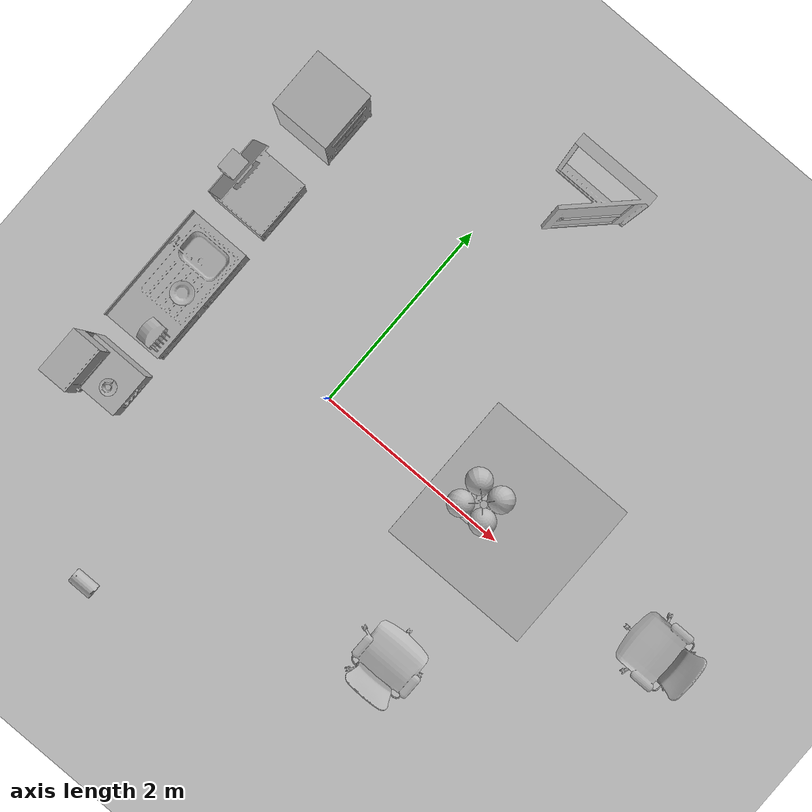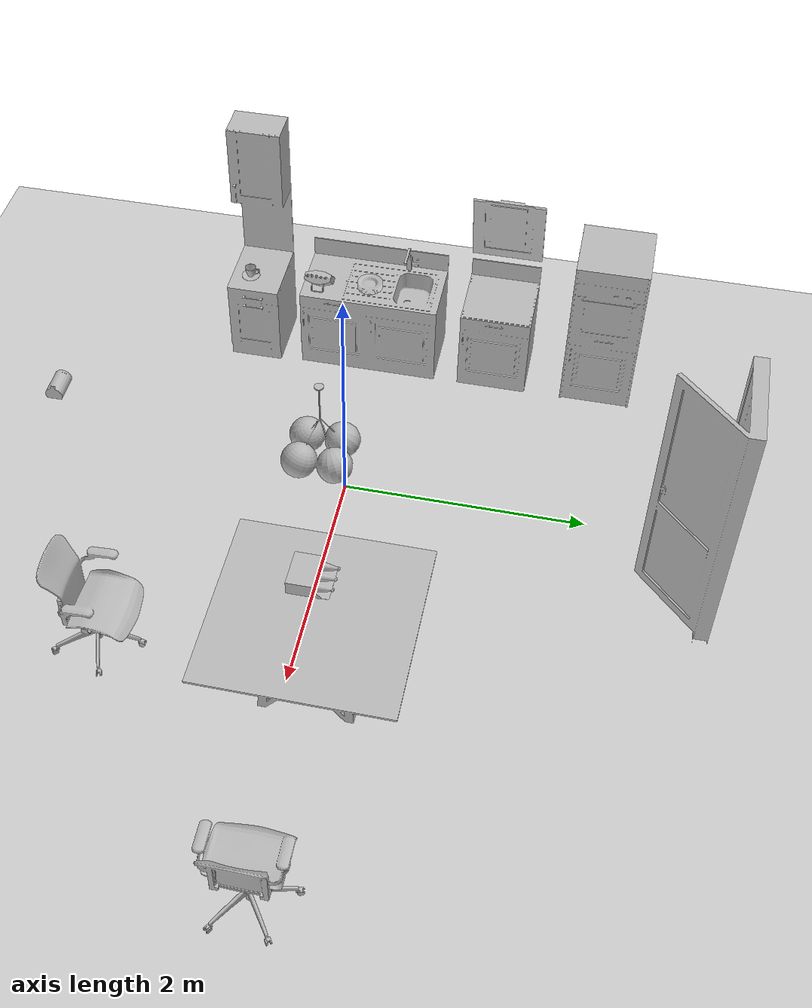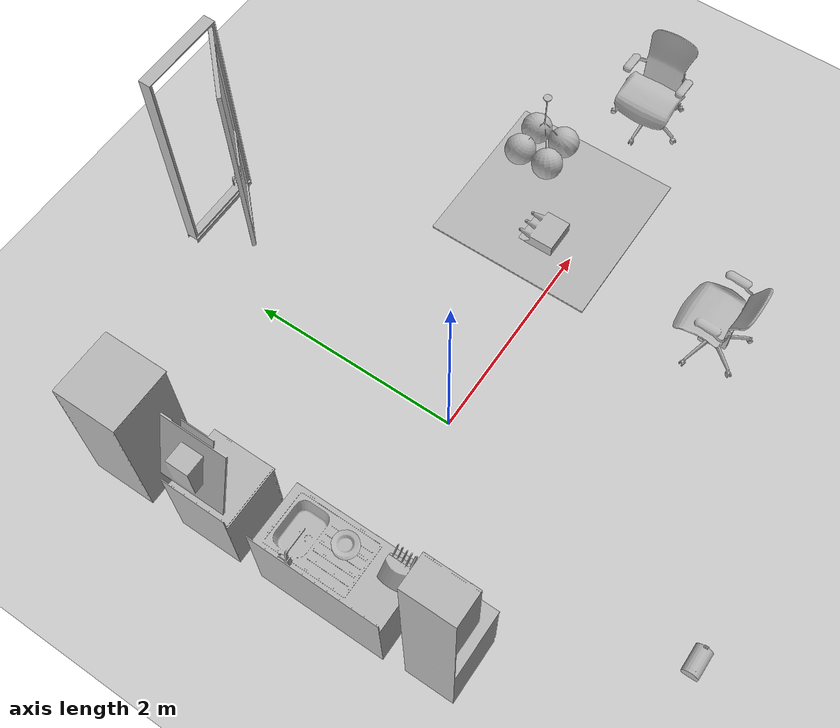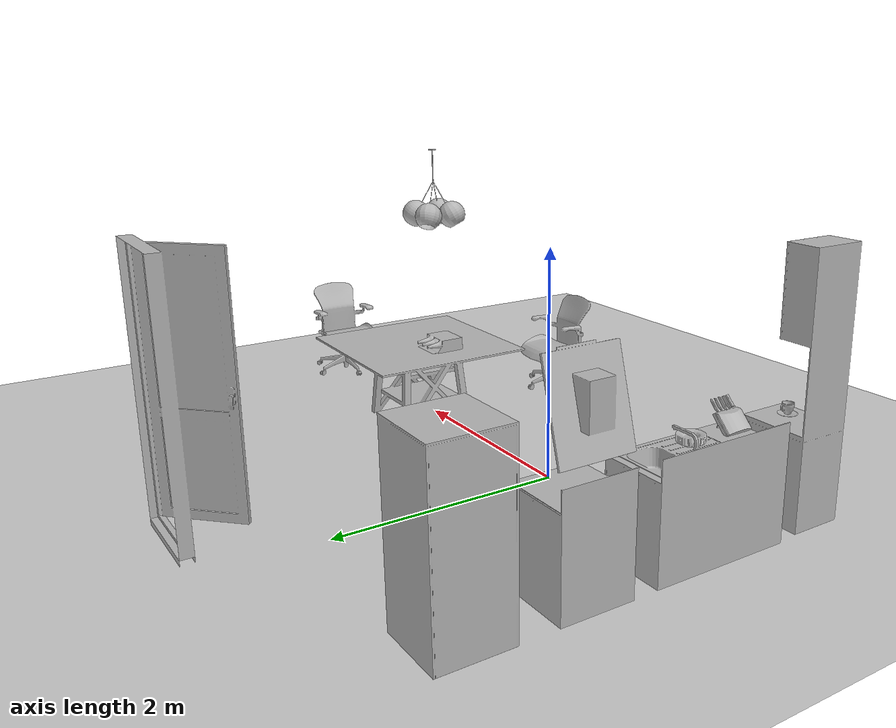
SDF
<sdf version="1.4">
 <world name="default">
  <light name="sun" type="directional">
   <pose>0 0 10 0 -0 0</pose>
   <diffuse>0.8 0.8 0.8 1</diffuse>
   <specular>0.2 0.2 0.2 1</specular>
   <attenuation>
    <range>1000</range>
    <constant>0.9</constant>
    <linear>0.01</linear>
    <quadratic>0.001</quadratic>
   </attenuation>
   <direction>-0.5 0.1 -0.9</direction>
  </light>
  <model name="ground_plane">
   <static>1</static>
   <link name="link">
    <collision name="collision">
     <geometry><plane><normal>0 0 1</normal><size>100 100</size></plane></geometry>
     <surface><friction><ode><mu>100</mu><mu2>50</mu2></ode></friction></surface>
    </collision>
    <visual name="visual">
     <cast_shadows>0</cast_shadows>
     <geometry><plane><normal>0 0 1</normal><size>100 100</size></plane></geometry>
     <material>
      <script><uri>file://media/materials/scripts/gazebo.material</uri><name>Gazebo/Grey</name></script>
     </material>
    </visual>
    <velocity_decay><linear>0</linear><angular>0</angular></velocity_decay>
   </link>
  </model>
  <physics type="ode">
   <max_step_size>0.001</max_step_size>
   <real_time_factor>1</real_time_factor>
   <real_time_update_rate>1000</real_time_update_rate>
   <gravity>0 0 -9.8</gravity>
  </physics>
  <scene><ambient>0.4 0.4 0.4 1</ambient><background>0.7 0.7 0.7 1</background><shadows>1</shadows></scene>
  <spherical_coordinates>
   <surface_model>EARTH_WGS84</surface_model>
   <latitude_deg>0</latitude_deg>
   <longitude_deg>0</longitude_deg>
   <elevation>0</elevation>
   <heading_deg>0</heading_deg>
  </spherical_coordinates>
  <model name="671_0">
   <pose>-1.66574 1.005 0.03 0 -0 0</pose>
   <static>1</static>
   <link name="link">
    <collision name="collision"><geometry><box><size>0.610464 0.6 2</size></box></geometry></collision>
    <visual name="visual"><geometry><mesh><uri>model://671/671.dae</uri></mesh></geometry></visual>
    <velocity_decay><linear>0</linear><angular>0</angular></velocity_decay>
   </link>
  </model>
  <model name="665_0">
   <pose>-1.67528 1.9192 0.03 0 -0 0</pose>
   <static>1</static>
   <link name="link">
    <collision name="collision"><geometry><box><size>0.610464 0.6 2</size></box></geometry></collision>
    <visual name="visual"><geometry><mesh><uri>model://665/665.dae</uri></mesh></geometry></visual>
    <velocity_decay><linear>0</linear><angular>0</angular></velocity_decay>
   </link>
  </model>
  <model name="670_0">
   <pose>-1.65842 -0.104749 0.03 0 -0 0</pose>
   <static>1</static>
   <link name="link">
    <collision name="collision"><geometry><box><size>0.610464 1.2 2</size></box></geometry></collision>
    <visual name="visual"><geometry><mesh><uri>model://670/670.dae</uri></mesh></geometry></visual>
    <velocity_decay><linear>0</linear><angular>0</angular></velocity_decay>
   </link>
  </model>
  <model name="603_0">
   <pose>-1.62455 -1.119 0.03 0 -0 0</pose>
   <static>1</static>
   <link name="link">
    <collision name="collision"><geometry><box><size>0.62 0.45 2</size></box></geometry></collision>
    <visual name="visual"><geometry><mesh><uri>model://603/603.dae</uri></mesh></geometry></visual>
    <velocity_decay><linear>0</linear><angular>0</angular></velocity_decay>
   </link>
  </model>
  <model name="530_0">
   <pose>-1.57073 -0.123237 0.81 0 -0 0</pose>
   <static>1</static>
   <link name="link">
    <collision name="collision"><geometry><box><size>0.219994 0.219994 2</size></box></geometry></collision>
    <visual name="visual"><geometry><mesh><uri>model://530/530.dae</uri></mesh></geometry></visual>
    <velocity_decay><linear>0</linear><angular>0</angular></velocity_decay>
   </link>
  </model>
  <model name="538_0">
   <pose>-1.51935 -0.564129 0.81 0 -0 0</pose>
   <static>1</static>
   <link name="link">
    <collision name="collision"><geometry><box><size>0.26966 0.229753 2</size></box></geometry></collision>
    <visual name="visual"><geometry><mesh><uri>model://538/538.dae</uri></mesh></geometry></visual>
    <velocity_decay><linear>0</linear><angular>0</angular></velocity_decay>
   </link>
  </model>
  <model name="149_0">
   <pose>-1.53074 -1.179 0.81 0 -0 0</pose>
   <static>1</static>
   <link name="link">
    <collision name="collision"><geometry><box><size>0.160344 0.162279 0</size></box></geometry></collision>
    <visual name="visual"><geometry><mesh><uri>model://149/149.dae</uri></mesh></geometry></visual>
    <velocity_decay><linear>0</linear><angular>0</angular></velocity_decay>
   </link>
  </model>
  <model name="265_0">
   <pose>1.63364 -0.034032 0.786731 0 -0 0</pose>
   <static>1</static>
   <link name="link">
    <collision name="collision"><geometry><box><size>0.21878 0.298764 2</size></box></geometry></collision>
    <visual name="visual"><geometry><mesh><uri>model://265/265.dae</uri></mesh></geometry></visual>
    <velocity_decay><linear>0</linear><angular>0</angular></velocity_decay>
   </link>
  </model>
  <model name="395_0">
   <pose>-0.479525 -2.74061 0.03 0 -0 1.5708</pose>
   <static>1</static>
   <link name="link">
    <collision name="collision"><geometry><box><size>0.199765 0.157 2</size></box></geometry></collision>
    <visual name="visual"><geometry><mesh><uri>model://395/395.dae</uri></mesh></geometry></visual>
    <velocity_decay><linear>0</linear><angular>0</angular></velocity_decay>
   </link>
  </model>
  <model name="525_0">
   <pose>1.92086 0.213001 0.03 0 -0 0</pose>
   <static>1</static>
   <link name="link">
    <collision name="collision"><geometry><box><size>1.5 1.5 2</size></box></geometry></collision>
    <visual name="visual"><geometry><mesh><uri>model://525/525.dae</uri></mesh></geometry></visual>
    <velocity_decay><linear>0</linear><angular>0</angular></velocity_decay>
   </link>
  </model>
  <model name="516_1">
   <pose>1.93761 -1.454 0.03 0 -0 1.5708</pose>
   <static>1</static>
   <link name="link">
    <collision name="collision"><geometry><box><size>0.680392 0.718166 2</size></box></geometry></collision>
    <visual name="visual"><geometry><mesh><uri>model://516/516.dae</uri></mesh></geometry></visual>
    <velocity_decay><linear>0</linear><angular>0</angular></velocity_decay>
   </link>
  </model>
  <model name="516_2">
   <pose>3.73415 0.189003 0.03 0 0 -3.14159</pose>
   <static>1</static>
   <link name="link">
    <collision name="collision"><geometry><box><size>0.680392 0.718166 2</size></box></geometry></collision>
    <visual name="visual"><geometry><mesh><uri>model://516/516.dae</uri></mesh></geometry></visual>
    <velocity_decay><linear>0</linear><angular>0</angular></velocity_decay>
   </link>
  </model>
  <model name="632_0">
   <pose>1.54847 0.201003 1.97 0 -0 0</pose>
   <static>1</static>
   <link name="link">
    <collision name="collision"><geometry><box><size>0.48 0.48 0</size></box></geometry></collision>
    <visual name="visual"><geometry><mesh><uri>model://632/632.dae</uri></mesh></geometry></visual>
    <velocity_decay><linear>0</linear><angular>0</angular></velocity_decay>
   </link>
  </model>
  <model name="247_0">
   <pose>0.61282 2.99117 0 0 -0 1.5708</pose>
   <static>1</static>
   <link name="link">
    <collision name="collision"><geometry><box><size>0.61 0.8 2</size></box></geometry></collision>
    <visual name="visual"><geometry><mesh><uri>model://247/247.dae</uri></mesh></geometry></visual>
    <velocity_decay><linear>0</linear><angular>0</angular></velocity_decay>
   </link>
  </model>
 </world>
</sdf>
